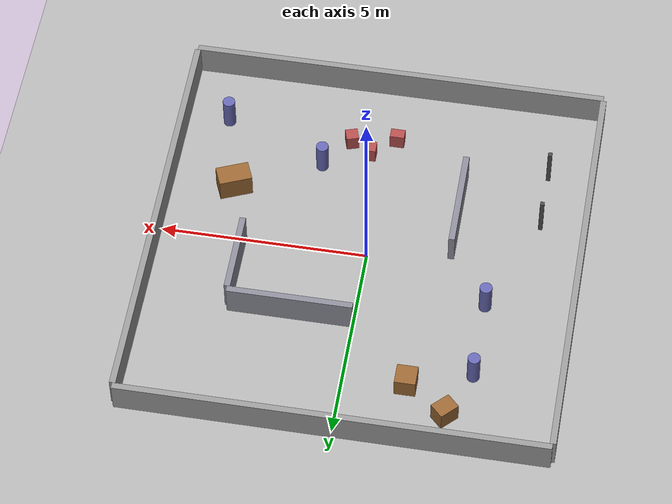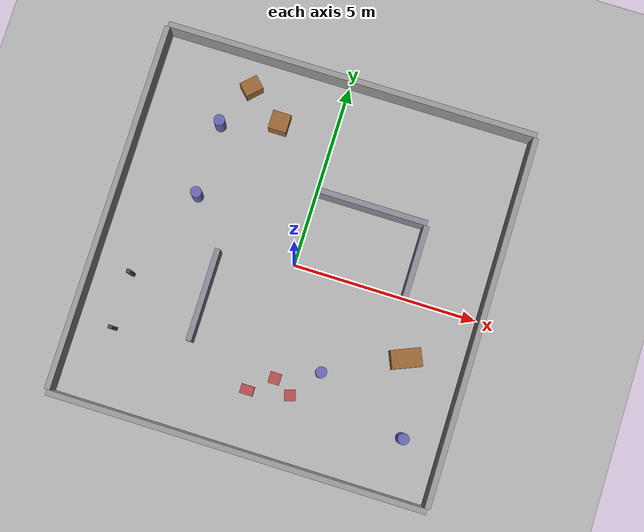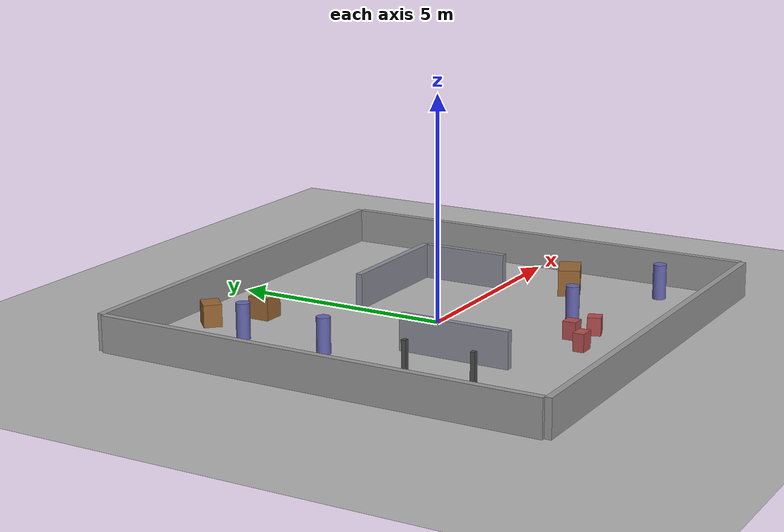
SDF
<?xml version="1.0"?>
<sdf version="1.8">
  <world name="obstacles">

    <!-- ── Physics ───────────────────────────────────────────────────── -->
    <physics name="1ms" type="ignored">
      <max_step_size>0.001</max_step_size>
      <real_time_update_rate>1000</real_time_update_rate>
      <real_time_factor>1.0</real_time_factor>
    </physics>

    <!-- ── Required world systems ────────────────────────────────────── -->
    <plugin filename="gz-sim-physics-system"
            name="gz::sim::systems::Physics"/>
    <plugin filename="gz-sim-user-commands-system"
            name="gz::sim::systems::UserCommands"/>
    <plugin filename="gz-sim-scene-broadcaster-system"
            name="gz::sim::systems::SceneBroadcaster"/>
    <plugin filename="gz-sim-contact-system"
            name="gz::sim::systems::Contact"/>
    <plugin filename="gz-sim-sensors-system"
            name="gz::sim::systems::Sensors">
      <render_engine>ogre2</render_engine>
    </plugin>
    <plugin filename="gz-sim-imu-system"
            name="gz::sim::systems::Imu"/>

    <!-- ── Lighting ───────────────────────────────────────────────────── -->
    <light type="directional" name="sun">
      <cast_shadows>true</cast_shadows>
      <pose>0 0 10 0 0 0</pose>
      <diffuse>0.8 0.8 0.8 1</diffuse>
      <specular>0.2 0.2 0.2 1</specular>
      <attenuation>
        <range>1000</range>
        <constant>0.9</constant>
        <linear>0.01</linear>
        <quadratic>0.001</quadratic>
      </attenuation>
      <direction>-0.5 0.1 -0.9</direction>
    </light>

    <!-- ── Ground plane ───────────────────────────────────────────────── -->
    <model name="ground_plane">
      <static>true</static>
      <link name="link">
        <collision name="collision">
          <geometry>
            <plane>
              <normal>0 0 1</normal>
              <size>100 100</size>
            </plane>
          </geometry>
          <surface>
            <friction>
              <ode><mu>1.0</mu><mu2>1.0</mu2></ode>
            </friction>
          </surface>
        </collision>
        <visual name="visual">
          <geometry>
            <plane>
              <normal>0 0 1</normal>
              <size>100 100</size>
            </plane>
          </geometry>
          <material>
            <ambient>0.7 0.7 0.7 1</ambient>
            <diffuse>0.7 0.7 0.7 1</diffuse>
            <specular>0.1 0.1 0.1 1</specular>
          </material>
        </visual>
      </link>
    </model>

    <!-- North wall  (+Y) -->
    <model name="wall_north">
      <static>true</static>
      <pose>0 5.075 0.4  0 0 0</pose>
      <link name="link">
        <collision name="col"><geometry><box><size>10.15 0.15 0.8</size></box></geometry></collision>
        <visual name="vis">
          <geometry><box><size>10.15 0.15 0.8</size></box></geometry>
          <material><ambient>0.6 0.6 0.6 1</ambient><diffuse>0.6 0.6 0.6 1</diffuse></material>
        </visual>
      </link>
    </model>

    <!-- South wall  (-Y) -->
    <model name="wall_south">
      <static>true</static>
      <pose>0 -5.075 0.4  0 0 0</pose>
      <link name="link">
        <collision name="col"><geometry><box><size>10.15 0.15 0.8</size></box></geometry></collision>
        <visual name="vis">
          <geometry><box><size>10.15 0.15 0.8</size></box></geometry>
          <material><ambient>0.6 0.6 0.6 1</ambient><diffuse>0.6 0.6 0.6 1</diffuse></material>
        </visual>
      </link>
    </model>

    <!-- East wall  (+X) -->
    <model name="wall_east">
      <static>true</static>
      <pose>5.075 0 0.4  0 0 0</pose>
      <link name="link">
        <collision name="col"><geometry><box><size>0.15 10.0 0.8</size></box></geometry></collision>
        <visual name="vis">
          <geometry><box><size>0.15 10.0 0.8</size></box></geometry>
          <material><ambient>0.6 0.6 0.6 1</ambient><diffuse>0.6 0.6 0.6 1</diffuse></material>
        </visual>
      </link>
    </model>

    <!-- West wall  (-X) -->
    <model name="wall_west">
      <static>true</static>
      <pose>-5.075 0 0.4  0 0 0</pose>
      <link name="link">
        <collision name="col"><geometry><box><size>0.15 10.0 0.8</size></box></geometry></collision>
        <visual name="vis">
          <geometry><box><size>0.15 10.0 0.8</size></box></geometry>
          <material><ambient>0.6 0.6 0.6 1</ambient><diffuse>0.6 0.6 0.6 1</diffuse></material>
        </visual>
      </link>
    </model>

    <!-- ================================================================
         INTERIOR WALLS — create corridors and a room
         ================================================================ -->

    <!-- L-wall segment: horizontal part (NE quadrant) -->
    <model name="inner_wall_h1">
      <static>true</static>
      <pose>1.5 2.0 0.4  0 0 0</pose>
      <link name="link">
        <collision name="col"><geometry><box><size>3.0 0.15 0.8</size></box></geometry></collision>
        <visual name="vis">
          <geometry><box><size>3.0 0.15 0.8</size></box></geometry>
          <material><ambient>0.55 0.55 0.6 1</ambient><diffuse>0.55 0.55 0.6 1</diffuse></material>
        </visual>
      </link>
    </model>

    <!-- L-wall segment: vertical part (continues south) -->
    <model name="inner_wall_v1">
      <static>true</static>
      <pose>3.0 0.925 0.4  0 0 0</pose>
      <link name="link">
        <collision name="col"><geometry><box><size>0.15 2.0 0.8</size></box></geometry></collision>
        <visual name="vis">
          <geometry><box><size>0.15 2.0 0.8</size></box></geometry>
          <material><ambient>0.55 0.55 0.6 1</ambient><diffuse>0.55 0.55 0.6 1</diffuse></material>
        </visual>
      </link>
    </model>

    <!-- Short divider wall in SW quadrant -->
    <model name="inner_wall_sw">
      <static>true</static>
      <pose>-2.0 -1.5 0.4  0 0 1.5708</pose>
      <link name="link">
        <collision name="col"><geometry><box><size>2.5 0.15 0.8</size></box></geometry></collision>
        <visual name="vis">
          <geometry><box><size>2.5 0.15 0.8</size></box></geometry>
          <material><ambient>0.55 0.55 0.6 1</ambient><diffuse>0.55 0.55 0.6 1</diffuse></material>
        </visual>
      </link>
    </model>

    <!-- ================================================================
         CYLINDER PILLARS  — LiDAR-friendly curved surfaces
         ================================================================ -->

    <model name="pillar_1">
      <static>true</static>
      <pose>-3.0 3.0 0.4  0 0 0</pose>
      <link name="link">
        <collision name="col"><geometry><cylinder><radius>0.15</radius><length>0.8</length></cylinder></geometry></collision>
        <visual name="vis">
          <geometry><cylinder><radius>0.15</radius><length>0.8</length></cylinder></geometry>
          <material><ambient>0.4 0.4 0.7 1</ambient><diffuse>0.4 0.4 0.7 1</diffuse></material>
        </visual>
      </link>
    </model>

    <model name="pillar_2">
      <static>true</static>
      <pose>-3.0 1.0 0.4  0 0 0</pose>
      <link name="link">
        <collision name="col"><geometry><cylinder><radius>0.15</radius><length>0.8</length></cylinder></geometry></collision>
        <visual name="vis">
          <geometry><cylinder><radius>0.15</radius><length>0.8</length></cylinder></geometry>
          <material><ambient>0.4 0.4 0.7 1</ambient><diffuse>0.4 0.4 0.7 1</diffuse></material>
        </visual>
      </link>
    </model>

    <model name="pillar_3">
      <static>true</static>
      <pose>1.5 -2.5 0.4  0 0 0</pose>
      <link name="link">
        <collision name="col"><geometry><cylinder><radius>0.15</radius><length>0.8</length></cylinder></geometry></collision>
        <visual name="vis">
          <geometry><cylinder><radius>0.15</radius><length>0.8</length></cylinder></geometry>
          <material><ambient>0.4 0.4 0.7 1</ambient><diffuse>0.4 0.4 0.7 1</diffuse></material>
        </visual>
      </link>
    </model>

    <model name="pillar_4">
      <static>true</static>
      <pose>4.0 -3.5 0.4  0 0 0</pose>
      <link name="link">
        <collision name="col"><geometry><cylinder><radius>0.15</radius><length>0.8</length></cylinder></geometry></collision>
        <visual name="vis">
          <geometry><cylinder><radius>0.15</radius><length>0.8</length></cylinder></geometry>
          <material><ambient>0.4 0.4 0.7 1</ambient><diffuse>0.4 0.4 0.7 1</diffuse></material>
        </visual>
      </link>
    </model>

    <!-- ================================================================
         BOX OBSTACLES — various sizes
         ================================================================ -->

    <!-- Large crate (SE quadrant) -->
    <model name="box_large_1">
      <static>true</static>
      <pose>3.5 -1.5 0.3  0 0 0.4</pose>
      <link name="link">
        <collision name="col"><geometry><box><size>0.8 0.5 0.6</size></box></geometry></collision>
        <visual name="vis">
          <geometry><box><size>0.8 0.5 0.6</size></box></geometry>
          <material><ambient>0.6 0.4 0.2 1</ambient><diffuse>0.6 0.4 0.2 1</diffuse></material>
        </visual>
      </link>
    </model>

    <!-- Medium box (NW quadrant) -->
    <model name="box_medium_1">
      <static>true</static>
      <pose>-1.5 3.5 0.25  0 0 0</pose>
      <link name="link">
        <collision name="col"><geometry><box><size>0.5 0.5 0.5</size></box></geometry></collision>
        <visual name="vis">
          <geometry><box><size>0.5 0.5 0.5</size></box></geometry>
          <material><ambient>0.6 0.4 0.2 1</ambient><diffuse>0.6 0.4 0.2 1</diffuse></material>
        </visual>
      </link>
    </model>

    <!-- Medium box (NW, offset from first) -->
    <model name="box_medium_2">
      <static>true</static>
      <pose>-2.5 4.2 0.25  0 0 0.785</pose>
      <link name="link">
        <collision name="col"><geometry><box><size>0.5 0.4 0.5</size></box></geometry></collision>
        <visual name="vis">
          <geometry><box><size>0.5 0.4 0.5</size></box></geometry>
          <material><ambient>0.6 0.4 0.2 1</ambient><diffuse>0.6 0.4 0.2 1</diffuse></material>
        </visual>
      </link>
    </model>

    <!-- Small block cluster (centre-south) -->
    <model name="box_small_1">
      <static>true</static>
      <pose>0.4 -3.0 0.2  0 0 0</pose>
      <link name="link">
        <collision name="col"><geometry><box><size>0.3 0.3 0.4</size></box></geometry></collision>
        <visual name="vis">
          <geometry><box><size>0.3 0.3 0.4</size></box></geometry>
          <material><ambient>0.7 0.3 0.3 1</ambient><diffuse>0.7 0.3 0.3 1</diffuse></material>
        </visual>
      </link>
    </model>

    <model name="box_small_2">
      <static>true</static>
      <pose>0.9 -3.3 0.2  0 0 0.3</pose>
      <link name="link">
        <collision name="col"><geometry><box><size>0.3 0.3 0.4</size></box></geometry></collision>
        <visual name="vis">
          <geometry><box><size>0.3 0.3 0.4</size></box></geometry>
          <material><ambient>0.7 0.3 0.3 1</ambient><diffuse>0.7 0.3 0.3 1</diffuse></material>
        </visual>
      </link>
    </model>

    <model name="box_small_3">
      <static>true</static>
      <pose>-0.2 -3.5 0.2  0 0 0</pose>
      <link name="link">
        <collision name="col"><geometry><box><size>0.35 0.25 0.4</size></box></geometry></collision>
        <visual name="vis">
          <geometry><box><size>0.35 0.25 0.4</size></box></geometry>
          <material><ambient>0.7 0.3 0.3 1</ambient><diffuse>0.7 0.3 0.3 1</diffuse></material>
        </visual>
      </link>
    </model>

    <!-- Tall narrow post (gives LiDAR a thin return) -->
    <model name="post_1">
      <static>true</static>
      <pose>-4.0 -3.0 0.5  0 0 0</pose>
      <link name="link">
        <collision name="col"><geometry><box><size>0.1 0.1 1.0</size></box></geometry></collision>
        <visual name="vis">
          <geometry><box><size>0.1 0.1 1.0</size></box></geometry>
          <material><ambient>0.3 0.3 0.3 1</ambient><diffuse>0.3 0.3 0.3 1</diffuse></material>
        </visual>
      </link>
    </model>

    <model name="post_2">
      <static>true</static>
      <pose>-4.0 -1.5 0.5  0 0 0</pose>
      <link name="link">
        <collision name="col"><geometry><box><size>0.1 0.1 1.0</size></box></geometry></collision>
        <visual name="vis">
          <geometry><box><size>0.1 0.1 1.0</size></box></geometry>
          <material><ambient>0.3 0.3 0.3 1</ambient><diffuse>0.3 0.3 0.3 1</diffuse></material>
        </visual>
      </link>
    </model>

  </world>
</sdf>
